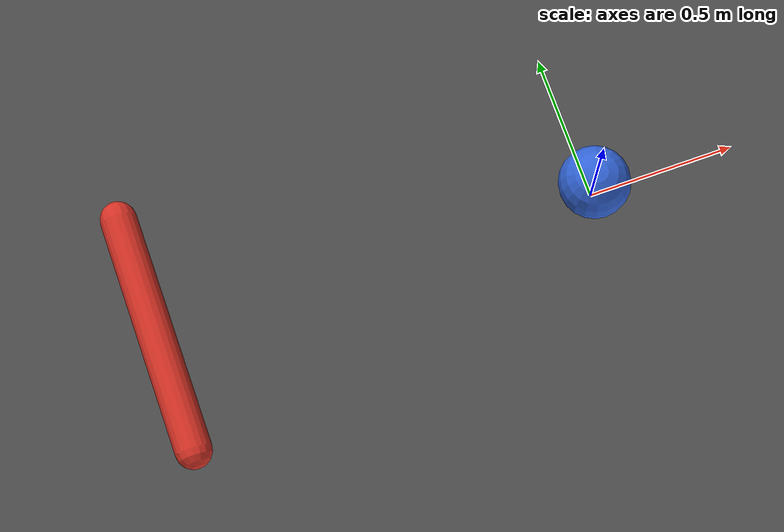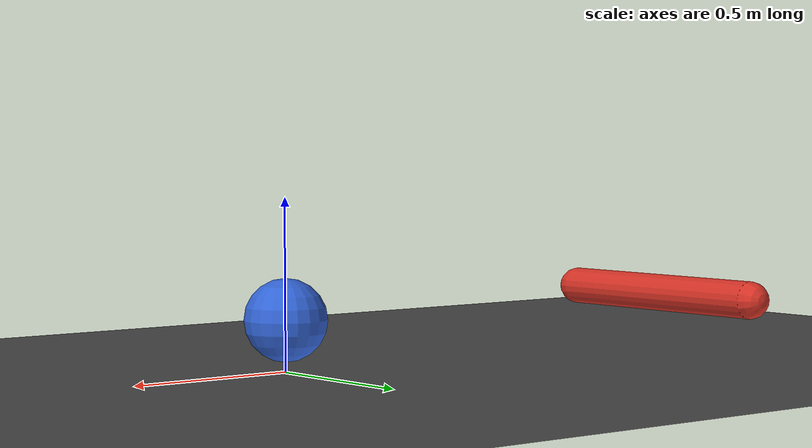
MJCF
<mujoco model="push-object">
  <compiler angle="radian"/>
  <option gravity="0 0 -9.81" timestep="0.002" integrator="RK4"/>

  <worldbody>
    <geom type="plane" size="5 5 0.1" rgba="0.3 0.3 0.3 1"/>

    <body name="paddle" mocap="true" pos="-1.5 0 0.15">
      <geom name="paddle_geom" type="capsule" size="0.06" fromto="0 -0.4 0 0 0.4 0"
            mass="10.0" rgba="0.85 0.2 0.15 1"/>
    </body>

    <body name="ball" pos="0 0 0.15">
      <freejoint name="free"/>
      <geom name="ball_geom" type="sphere" size="0.12" mass="0.5"
            rgba="0.2 0.4 0.85 1"/>
    </body>
  </worldbody>
</mujoco>
